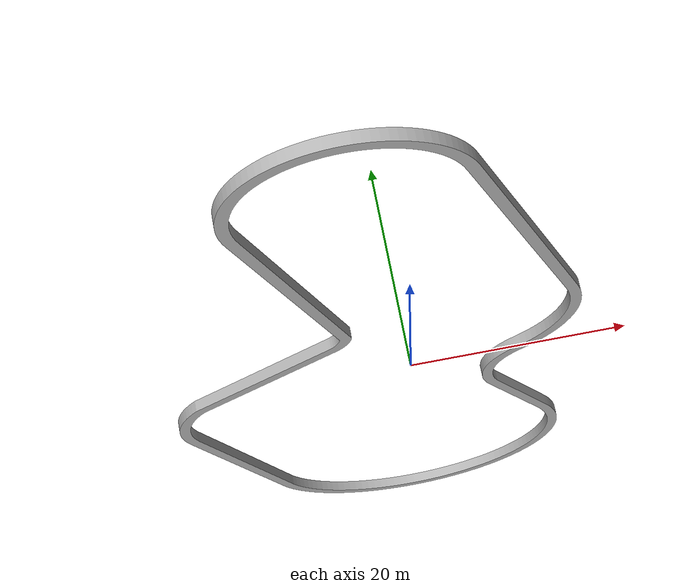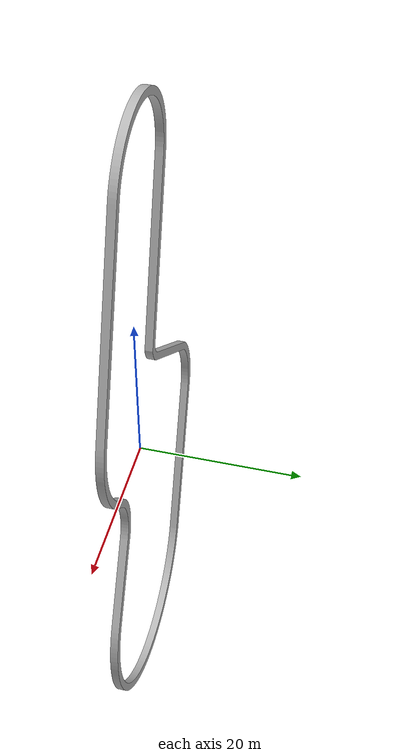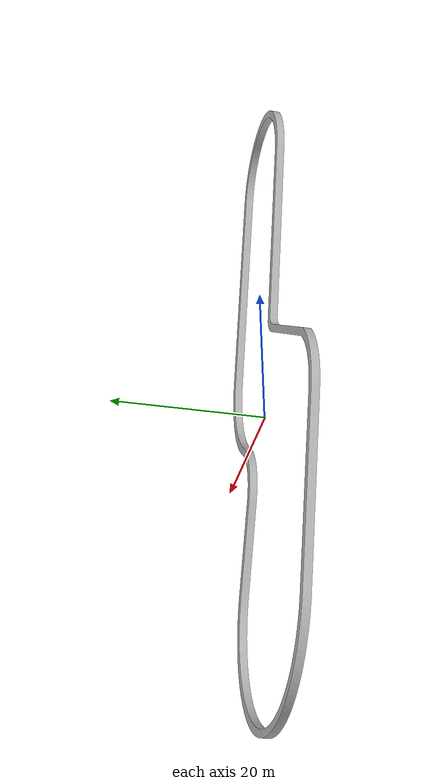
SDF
<?xml version='1.0'?>
<sdf version='1.6'>
  <model name="walll1">
    <static>true</static>
    <pose>0 0 0 0 0 0</pose>

    <link name="walll1">
      <pose>0 0 0 0 0 0</pose>
      <visual name="walll">
        <geometry>
          <mesh>
            <uri>model://walll1/meshes/RT1_Wall_O.dae</uri>
          </mesh>
        </geometry>
      </visual>
      <collision name="walll">
        <geometry>
          <mesh>
            <uri>model://walll1/meshes/RT1_Wall_O.dae</uri>
          </mesh>
        </geometry>
      </collision>
    </link>

  </model>
</sdf>
